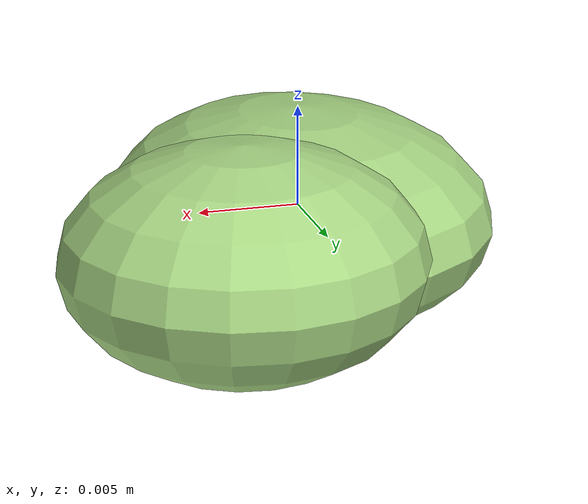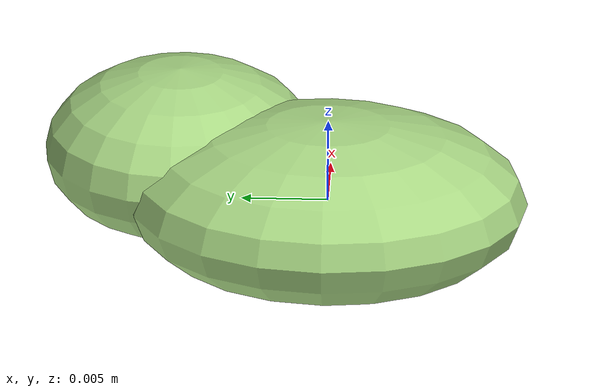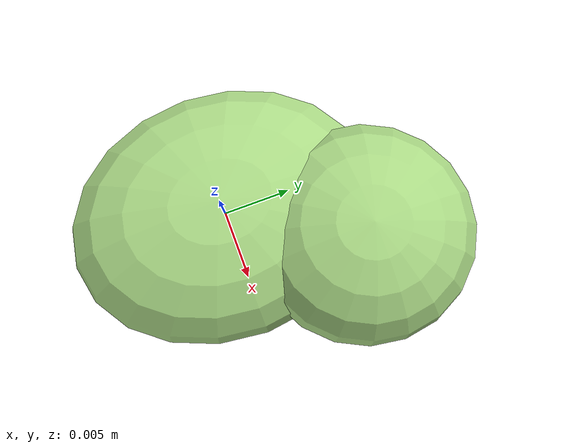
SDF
<?xml version="1.0" ?>
<!-- |    This document was autogenerated by xmacro from data/veggie_template/veggie_base.sdf.xacro  | -->
<!-- |    EDITING THIS FILE BY HAND IS NOT RECOMMENDED                                               | -->
<sdf version="1.8">
	<!-- Parameters -->
	<!-- Base -->
	<!-- Joint 0 -->
	<!-- Link 1 -->
	<!-- Joint 1 -->
	<!-- Link 2 -->
	<!-- Primitives -->
	<!-- All dimensions are half -->
	<!-- Object -->
	<model name="veggie">
		<!-- link0 -->
		<link name="link0">
			<inertial>
				<mass>0.0022209462827538842</mass>
				<inertia>
					<ixx>7.029849826228922e-08</ixx>
					<ixy>0</ixy>
					<ixz>0</ixz>
					<iyy>4.871470291511146e-08</iyy>
					<iyz>0</iyz>
					<izz>9.694964549865818e-08</izz>
				</inertia>
			</inertial>
			<visual name="link0_visual">
				<pose>0 0 0 0 0 0</pose>
				<geometry>
					<ellipsoid>
						<radii>0.009210607555094546 0.011551048911074304 0.004983548951857422</radii>
					</ellipsoid>
				</geometry>
				<material>
					<ambient>0.659 0.839 0.514 1</ambient>
					<diffuse>0.659 0.839 0.514 1</diffuse>
					<specular>0 0 0 0</specular>
					<emissive>0 0 0 1</emissive>
				</material>
			</visual>
			<collision name="link0_collision">
				<pose>0 0 0 0 0 0 </pose>
				<geometry>
					<ellipsoid>
						<radii>0.009210607555094546 0.011551048911074304 0.004983548951857422</radii>
					</ellipsoid>
				</geometry>
			</collision>
		</link>
		<!-- link1 -->
		<joint name="joint0" type="fixed">
			<pose relative_to="link0">0.004955979171345578 0.008884958934749382 0.0009370967273794705 0.0 0.0 0.0</pose>
			<parent>link0</parent>
			<child>link1</child>
		</joint>
		<link name="link1">
			<pose relative_to="joint0">0 0 0 0 0 0</pose>
			<inertial>
				<mass>0.0013608556220306575</mass>
				<inertia>
					<ixx>2.469470948311012e-08</ixx>
					<ixy>0</ixy>
					<ixz>0</ixz>
					<iyy>2.4308017268450126e-08</iyy>
					<iyz>0</iyz>
					<izz>3.54693534873893e-08</izz>
				</inertia>
			</inertial>
			<visual name="link1_visual">
				<pose>0 0 0 0 0 0</pose>
				<geometry>
					<ellipsoid>
						<radii>0.008028053233133377 0.008116058613282899 0.004986169163861014</radii>
					</ellipsoid>
				</geometry>
				<material>
					<ambient>0.659 0.839 0.514 1</ambient>
					<diffuse>0.659 0.839 0.514 1</diffuse>
					<specular>0 0 0 0</specular>
					<emissive>0 0 0 1</emissive>
				</material>
			</visual>
			<collision name="link1_collision">
				<pose>0 0 0 0 0 0 </pose>
				<geometry>
					<ellipsoid>
						<radii>0.008028053233133377 0.008116058613282899 0.004986169163861014</radii>
					</ellipsoid>
				</geometry>
			</collision>
		</link>
		<!-- link2 -->
	</model>
</sdf>
